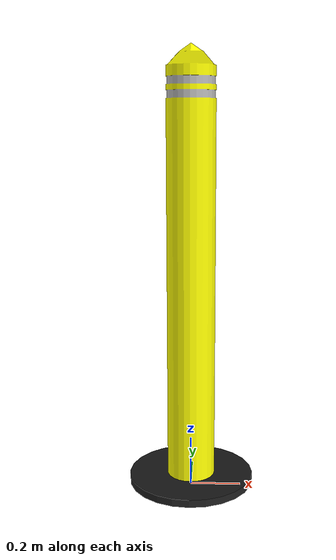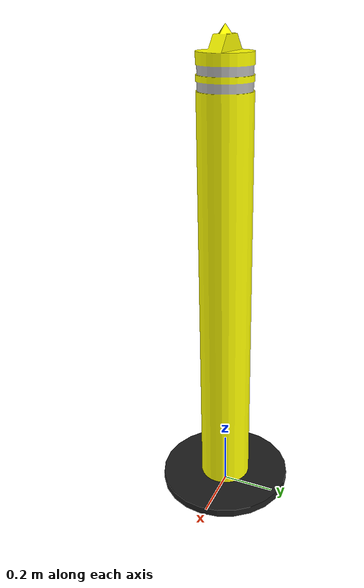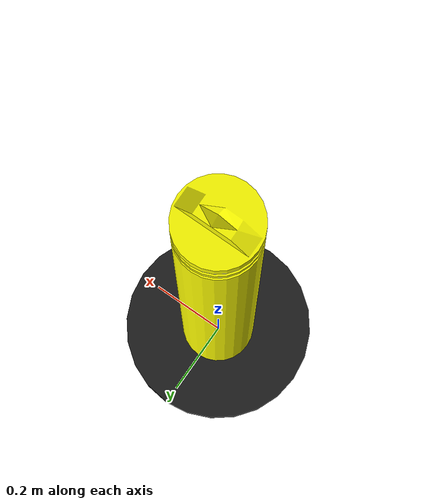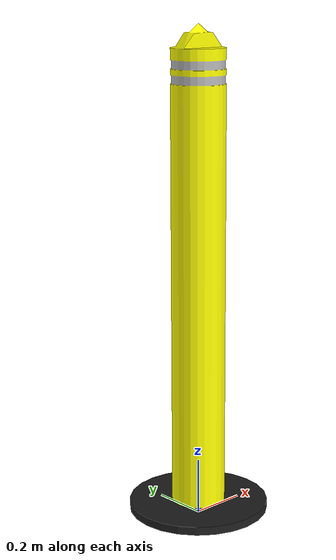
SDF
<?xml version='1.0'?>
<sdf version='1.4'>
  <model name="pylon_yellow">
    <static>false</static>

    <link name='pylon_body'>

      <inertial>
        <mass>0.8</mass>
      </inertial>

      <pose>0 0 .775 0 0 0</pose>
      <collision name='collision'>
        <geometry>
          <cylinder>
            <radius>.05</radius>
            <length>1.5</length>
          </cylinder>
        </geometry>
      </collision>

      <visual name='visual'>
        <pose>0 0 -.75 0 0 0</pose>
        <geometry>
          <mesh>
            <uri>model://pylon_yellow/meshes/YellowPylon.dae</uri>
          </mesh>
        </geometry>

      </visual>

    </link>
    <link name='pylon_base'>

      <inertial>
        <mass>3.62</mass>
      </inertial>

      <pose>0 0 .025 0 0 0</pose>
      <collision name='collision'>
        <geometry>
          <cylinder>
            <radius>.25</radius>
            <length>.05</length>
          </cylinder>
        </geometry>
      </collision>

    </link>

    <joint name="base_body" type="fixed">
      <parent>pylon_base</parent>
      <child>pylon_body</child>
      <pose>0 0 0 0 0 0</pose>

    </joint>

  </model>
</sdf>
